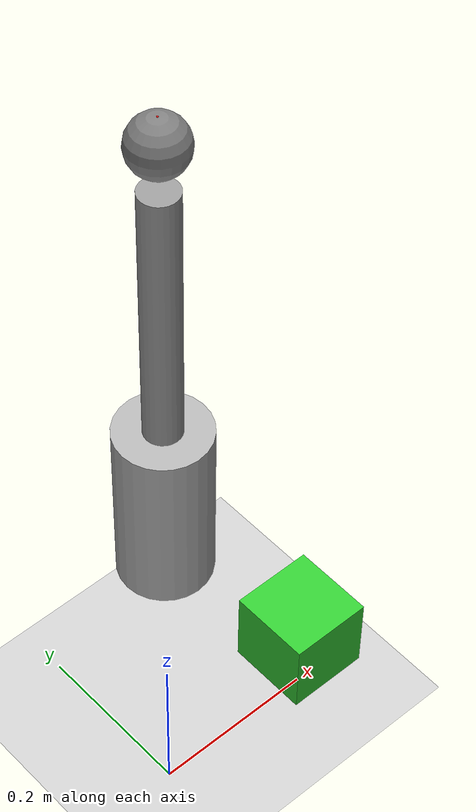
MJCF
<?xml version="1.0" ?>
<mujoco>
    <option timestep="0.001" gravity="0 0 -9.81"/>

    <!-- World -->
    <worldbody>
        <!-- Ground -->
        <geom type="plane" size="1 1 0.1" rgba="0.8 0.8 0.8 1"/>

        <!-- Robot Base -->
        <body name="robot_base" pos="0 0 0.5">
            <joint type="free"/>
            <geom type="cylinder" size="0.05 0.1" rgba="0.7 0.7 0.7 1"/>

            <!-- Robot Arm -->
            <body name="arm" pos="0 0 0.2">
                <joint type="ball" name="arm_joint"/>
                <geom type="cylinder" size="0.02 0.2" rgba="0.6 0.6 0.6 1"/>

                <!-- Tactile Sensor -->
                <body name="tactile_sensor" pos="0 0 0.25">
                    <joint type="ball" name="sensor_joint"/>
                    <geom type="sphere" size="0.03" rgba="0.5 0.5 0.5 1"/>

                    <!-- Tactile Sensing Elements -->
                    <body name="sensor_array">
                        <!-- 64 tactile sensing elements arranged in a grid -->
                        <!-- Each element is a small sphere that can detect contact -->
                        <geom type="sphere" name="sensor_sphere" size="0.001" rgba="0.9 0.1 0.1 1" pos="0 0 0.03"/>
                        <site name="sensor_touch" pos="0 0 0.03" size="0.001" rgba="0.9 0.1 0.1 1"/>
                        <!-- Add more sensing elements in a grid pattern -->
                        <!-- This is a simplified version - in practice, you'd want to add all 64 elements -->
                    </body>
                </body>
            </body>
        </body>

        <!-- Target Object (can be replaced with different shapes) -->
        <body name="target" pos="0.2 0 0.1">
            <joint type="free"/>
            <geom type="box" size="0.05 0.05 0.05" rgba="0.2 0.8 0.2 1"/>
        </body>
    </worldbody>

    <!-- Actuators -->
    <actuator>
        <!-- Robot arm control -->
        <motor joint="arm_joint" gear="100"/>
        <motor joint="sensor_joint" gear="50"/>
    </actuator>

    <!-- Sensors -->
    <sensor>
        <!-- Tactile sensors -->
        <framepos name="tactile_pos" objtype="geom" objname="sensor_sphere"/>
        <framequat name="tactile_quat" objtype="geom" objname="sensor_sphere"/>
        <framelinvel name="tactile_linvel" objtype="geom" objname="sensor_sphere"/>
        <frameangvel name="tactile_angvel" objtype="geom" objname="sensor_sphere"/>

        <!-- Contact sensors for each tactile element -->
        <touch name="tactile_contact" site="sensor_touch"/>
    </sensor>
</mujoco>
